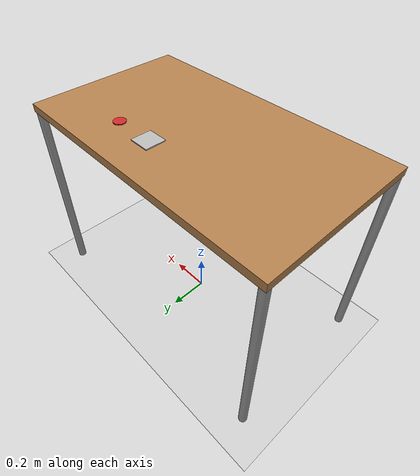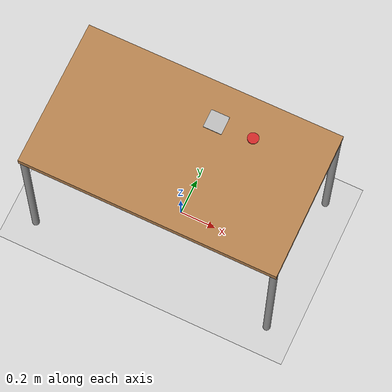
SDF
<sdf version="1.6">
 <world name="default">
  <model name="ground_plane">
   <static>1</static>
   <link name="link">
    <collision name="collision">
     <geometry><plane><normal>0 0 1</normal><size>100 100</size></plane></geometry>
     <surface><friction><ode><mu>100</mu><mu2>50</mu2></ode></friction></surface>
    </collision>
    <visual name="visual">
     <cast_shadows>0</cast_shadows>
     <geometry><plane><normal>0 0 1</normal><size>100 100</size></plane></geometry>
     <material>
      <script><uri>file://media/materials/scripts/gazebo.material</uri><name>Gazebo/Grey</name></script>
     </material>
    </visual>
   </link>
  </model>
  <model name="table">
   <static>1</static>
   <link name="link">
    <collision name="surface">
     <pose>0 0 1 0 -0 0</pose>
     <geometry><box><size>1.5 0.8 0.03</size></box></geometry>
     <surface><friction><ode><mu>0.6</mu><mu2>0.6</mu2></ode></friction></surface>
    </collision>
    <visual name="visual1">
     <pose>0 0 1 0 -0 0</pose>
     <geometry><box><size>1.4 0.8 0.04</size></box></geometry>
     <material>
      <script><uri>file://media/materials/scripts/gazebo.material</uri><name>Gazebo/Wood</name></script>
     </material>
    </visual>
    <collision name="front_left_leg">
     <pose>0.68 0.38 0.5 0 -0 0</pose>
     <geometry><cylinder><radius>0.02</radius><length>1</length></cylinder></geometry>
    </collision>
    <visual name="front_left_leg">
     <pose>0.68 0.38 0.5 0 -0 0</pose>
     <geometry><cylinder><radius>0.02</radius><length>1</length></cylinder></geometry>
     <material>
      <script><uri>file://media/materials/scripts/gazebo.material</uri><name>Gazebo/Grey</name></script>
     </material>
    </visual>
    <collision name="front_right_leg">
     <pose>0.68 -0.38 0.5 0 -0 0</pose>
     <geometry><cylinder><radius>0.02</radius><length>1</length></cylinder></geometry>
    </collision>
    <visual name="front_right_leg">
     <pose>0.68 -0.38 0.5 0 -0 0</pose>
     <geometry><cylinder><radius>0.02</radius><length>1</length></cylinder></geometry>
     <material>
      <script><uri>file://media/materials/scripts/gazebo.material</uri><name>Gazebo/Grey</name></script>
     </material>
    </visual>
    <collision name="back_right_leg">
     <pose>-0.68 -0.38 0.5 0 -0 0</pose>
     <geometry><cylinder><radius>0.02</radius><length>1</length></cylinder></geometry>
    </collision>
    <visual name="back_right_leg">
     <pose>-0.68 -0.38 0.5 0 -0 0</pose>
     <geometry><cylinder><radius>0.02</radius><length>1</length></cylinder></geometry>
     <material>
      <script><uri>file://media/materials/scripts/gazebo.material</uri><name>Gazebo/Grey</name></script>
     </material>
    </visual>
    <collision name="back_left_leg">
     <pose>-0.68 0.38 0.5 0 -0 0</pose>
     <geometry><cylinder><radius>0.02</radius><length>1</length></cylinder></geometry>
    </collision>
    <visual name="back_left_leg">
     <pose>-0.68 0.38 0.5 0 -0 0</pose>
     <geometry><cylinder><radius>0.02</radius><length>1</length></cylinder></geometry>
     <material>
      <script><uri>file://media/materials/scripts/gazebo.material</uri><name>Gazebo/Grey</name></script>
     </material>
    </visual>
   </link>
  </model>
  <light name="sun" type="directional">
   <pose>0 0 10 0 -0 0</pose>
   <diffuse>0.8 0.8 0.8 1</diffuse>
   <specular>0.1 0.1 0.1 1</specular>
   <attenuation>
    <range>1000</range>
    <constant>0.9</constant>
    <linear>0.01</linear>
    <quadratic>0.001</quadratic>
   </attenuation>
   <direction>-0.5 0.5 -1</direction>
  </light>
  <model name="ar_tag">
   <pose>0.1 0.2 1.02 0 -0 0</pose>
   <static>1</static>
   <link name="body">
    <visual name="visual">
     <geometry><mesh><uri>model://ar_tag.dae</uri><scale>1 1 1</scale></mesh></geometry>
    </visual>
   </link>
  </model>
  <model name="tomato_slice">
   <pose frame="world">0.3 0.200001 1.02 -0.000173 2.6e-05 -1e-06</pose>
   <link name="link">
    <inertial>
     <mass>1</mass>
     <inertia><ixx>0.145833</ixx><ixy>0</ixy><ixz>0</ixz><iyy>0.145833</iyy><iyz>0</iyz><izz>0.125</izz></inertia>
    </inertial>
    <collision name="collision">
     <geometry><cylinder><radius>0.03</radius><length>0.01</length></cylinder></geometry>
    </collision>
    <visual name="visual">
     <geometry><cylinder><radius>0.03</radius><length>0.01</length></cylinder></geometry>
     <material>
      <script><name>Gazebo/Red</name><uri>file://media/materials/scripts/gazebo.material</uri></script>
     </material>
    </visual>
   </link>
  </model>
  <gravity>0 0 -9.8</gravity>
  <magnetic_field>6e-06 2.3e-05 -4.2e-05</magnetic_field>
  <atmosphere type="adiabatic"/>
  <physics name="default_physics" default="0" type="ode">
   <max_step_size>0.001</max_step_size>
   <real_time_factor>1</real_time_factor>
   <real_time_update_rate>1000</real_time_update_rate>
  </physics>
  <scene><ambient>0.4 0.4 0.4 1</ambient><background>0.7 0.7 0.7 1</background><shadows>1</shadows></scene>
  <spherical_coordinates>
   <surface_model>EARTH_WGS84</surface_model>
   <latitude_deg>0</latitude_deg>
   <longitude_deg>0</longitude_deg>
   <elevation>0</elevation>
   <heading_deg>0</heading_deg>
  </spherical_coordinates>
 </world>
</sdf>
